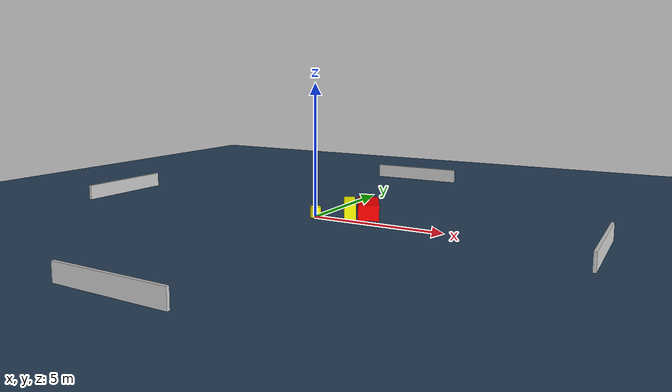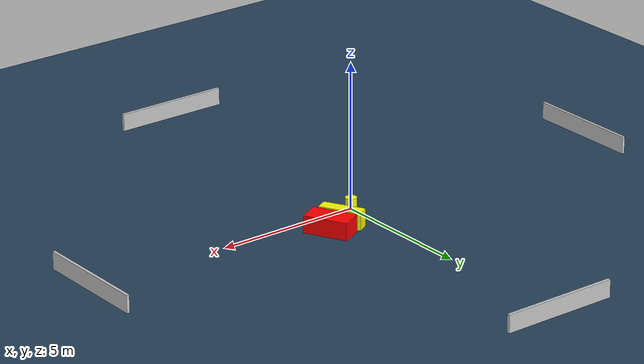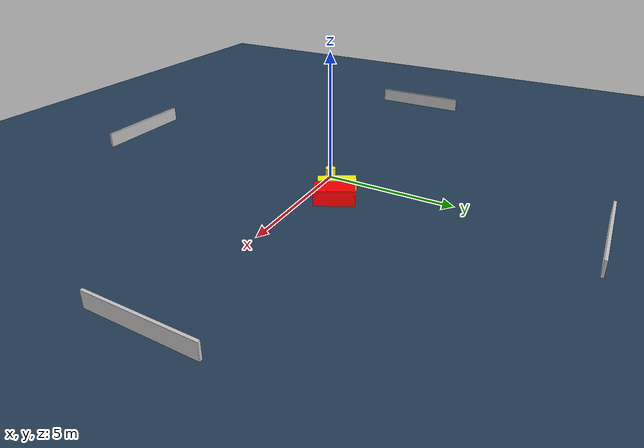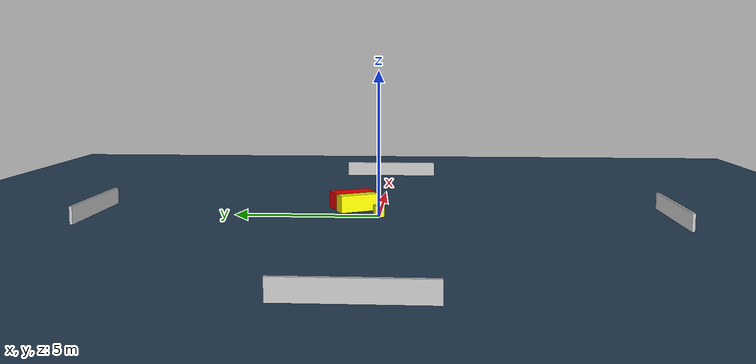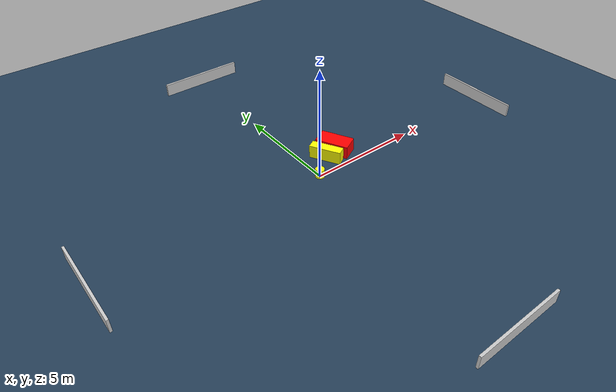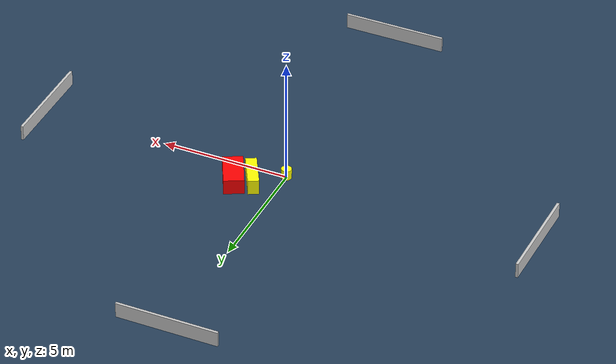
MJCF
<?xml version="1.0" ?>
<mujoco model="generated_environment">
  <option timestep="0.01" integrator="RK4" cone="elliptic"/>
  <default>
    <geom density="1"/>
  </default>
  <asset>
    <texture builtin="gradient" height="3072" name="skybox" rgb1="0.3 0.5 0.7" rgb2="0 0 0" type="skybox" width="512"/>
    <texture builtin="checker" height="300" name="groundplane" rgb1="0.2 0.3 0.4" rgb2="0.1 0.2 0.3" type="2d" width="300"/>
    <material name="groundplane" reflectance="0.2" texrepeat="5 5" texture="groundplane"/>
  </asset>
  <worldbody>
    <light dir="0 0 -1" directional="true" pos="0 0 1.5"/>
    <geom condim="3" friction="0.5 0.005 0.001" material="groundplane" name="floor" pos="0 0 0" size="0 0 0.05" type="plane"/>
    <body name="walls">
      <geom name="wall_1" condim="4" pos="-10.0 0.0 0.3" rgba="0.800000011920929 0.800000011920929 0.800000011920929 1.0" size="0.05 2.0 0.3" type="box"/>
      <geom name="wall_2" condim="4" pos="10.0 0.0 0.3" rgba="0.800000011920929 0.800000011920929 0.800000011920929 1.0" size="0.05 2.0 0.3" type="box"/>
      <geom name="wall_3" condim="4" pos="0.0 -10.0 0.3" rgba="0.800000011920929 0.800000011920929 0.800000011920929 1.0" size="2.0 0.05 0.3" type="box"/>
      <geom name="wall_4" condim="4" pos="0.0 10.0 0.3" rgba="0.800000011920929 0.800000011920929 0.800000011920929 1.0" size="2.0 0.05 0.3" type="box"/>
    </body>
    <body name="robot">
      <joint name="joint_x" type="slide" pos="0 0 0" axis="1 0 0"/>
      <joint name="joint_y" type="slide" pos="0 0 0" axis="0 1 0"/>
      <geom name="robot" type="cylinder" pos="0.0 0.0 0.2" size="0.2 0.2 0.0" mass="5.0" friction="1.0 0.005 0.0001" condim="4" rgba="1.0 1.0 0.0 1.0"/>
    </body>
    <body name="obstacle_1_movable">
      <geom name="obstacle_1_movable" condim="4" pos="1.0119892285279077 0.8256374981694288 0.3" euler="0 0 298.8922151048743" friction="0.0 0.005 0.001" rgba="1.0 1.0 0.0 1.0" size="0.7183105700580887 0.2127158623028918 0.3" type="box" mass="0.1"/>
      <joint type="free"/>
    </body>
    <body name="obstacle_2_static">
      <geom name="obstacle_2_static" condim="4" pos="1.6737697868396688 1.0634459565064525 0.3" euler="0 0 296.96005474582233" friction="0.0 0.005 0.001" rgba="1.0 0.0 0.0 1.0" size="0.7595786051124329 0.3908756879077981 0.3" type="box"/>
    </body>
  </worldbody>
  <actuator>
    <motor name="actuator_x" joint="joint_x" gear="1" ctrlrange="-1 1"/>
    <motor name="actuator_y" joint="joint_y" gear="1" ctrlrange="-1 1"/>
  </actuator>
</mujoco>
